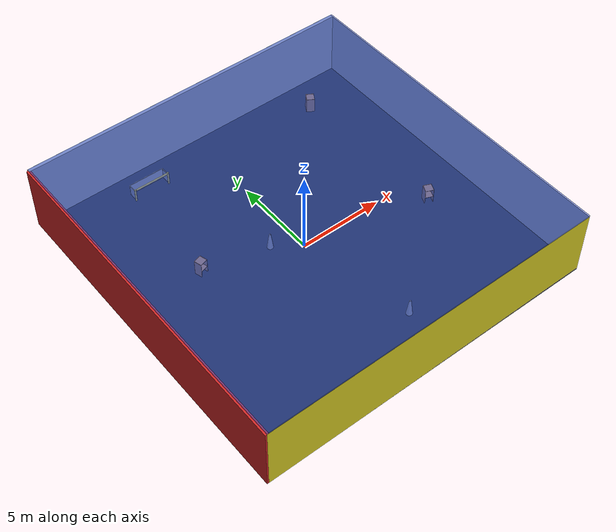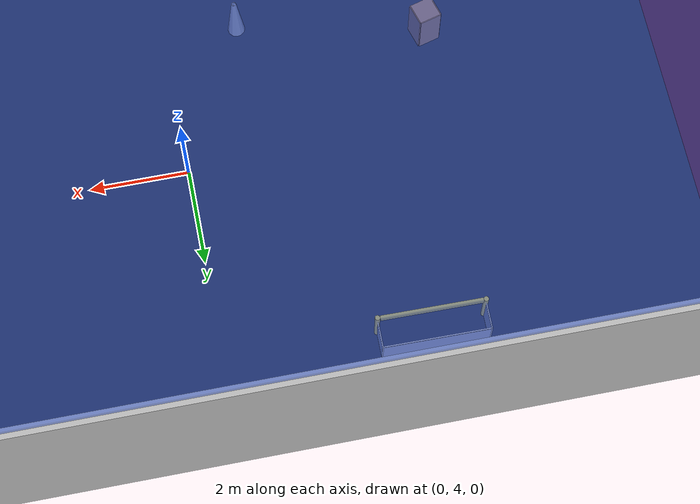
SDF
<sdf version="1.4">
 <world name="default">
  <physics type="ode">
   <max_step_size>0.001</max_step_size>
   <real_time_factor>1</real_time_factor>
   <real_time_update_rate>1000</real_time_update_rate>
   <gravity>0 0 -9.8</gravity>
  </physics>
  <scene><ambient>0.4 0.4 0.4 1</ambient><background>0.7 0.7 0.7 1</background><shadows>1</shadows></scene>
  <model name="Surrounding">
   <static>1</static>
   <link name="Ceiling">
    <collision name="Ceiling_Collision"><geometry><box><size>20 20 0.1</size></box></geometry></collision>
    <visual name="Ceiling_Visual">
     <geometry><box><size>20 20 0.1</size></box></geometry>
     <material>
      <script><uri>file://media/materials/scripts/gazebo.material</uri><name>Gazebo/BlueTransparent</name></script>
     </material>
    </visual>
    <pose>0 0 4.05 0 0 0</pose>
   </link>
   <link name="Wall_South">
    <collision name="Wall_South_Collision">
     <geometry><box><size>20 0 4</size></box></geometry>
     <pose>0 0 2 0 -0 0</pose>
    </collision>
    <visual name="Wall_South_Visual">
     <pose>0 0 2 0 -0 0</pose>
     <geometry><box><size>20 0 4</size></box></geometry>
     <material>
      <script><uri>file://media/materials/scripts/gazebo.material</uri><name>Gazebo/Yellow</name></script>
     </material>
    </visual>
    <velocity_decay><linear>0</linear><angular>0</angular></velocity_decay>
    <pose>0 -10 0 0 -0 0</pose>
   </link>
   <link name="Wall_East">
    <collision name="Wall_21_Collision">
     <geometry><box><size>20 0 4</size></box></geometry>
     <pose>0 0 2 0 -0 0</pose>
    </collision>
    <visual name="Wall_21_Visual">
     <pose>0 0 2 0 -0 0</pose>
     <geometry><box><size>20 0 4</size></box></geometry>
     <material>
      <script><uri>file://media/materials/scripts/gazebo.material</uri><name>Gazebo/CeilingTiled</name></script>
     </material>
    </visual>
    <velocity_decay><linear>0</linear><angular>0</angular></velocity_decay>
    <pose>10 0 0 0 -0 1.5708</pose>
   </link>
   <link name="Wall_North">
    <collision name="Wall_22_Collision">
     <geometry><box><size>20 0.2 4</size></box></geometry>
     <pose>0 0 2 0 -0 0</pose>
    </collision>
    <visual name="Wall_22_Visual">
     <pose>0 0 2 0 -0 0</pose>
     <geometry><box><size>20 0.2 4</size></box></geometry>
     <material>
      <script><uri>file://media/materials/scripts/gazebo.material</uri><name>Gazebo/LightOn</name></script>
     </material>
    </visual>
    <velocity_decay><linear>0</linear><angular>0</angular></velocity_decay>
    <pose>0 10 0 0 -0 0</pose>
   </link>
   <link name="Wall_West">
    <collision name="Wall_23_Collision">
     <geometry><box><size>20 0.2 4</size></box></geometry>
     <pose>0 0 2 0 -0 0</pose>
    </collision>
    <visual name="Wall_23_Visual">
     <pose>0 0 2 0 -0 0</pose>
     <geometry><box><size>20 0.2 4</size></box></geometry>
     <material>
      <script><uri>file://media/materials/scripts/gazebo.material</uri><name>Gazebo/RedGlow</name></script>
     </material>
    </visual>
    <velocity_decay><linear>0</linear><angular>0</angular></velocity_decay>
    <pose>-10 0 0 0 0 -1.5708</pose>
   </link>
   <link name="Ground_link">
    <collision name="collision">
     <pose>0 0 .05 0 -0 0</pose>
     <geometry><box><size>20 20 0.1</size></box></geometry>
    </collision>
    <visual name="visual">
     <pose>0 0 .05 0 -0 0</pose>
     <geometry><box><size>20 20 0.1</size></box></geometry>
     <material>
      <script><uri>file://media/materials/scripts/gazebo.material</uri><name>Gazebo/Black</name></script>
     </material>
    </visual>
   </link>
   <static>1</static>
  </model>
  <spherical_coordinates>
   <surface_model>EARTH_WGS84</surface_model>
   <latitude_deg>0</latitude_deg>
   <longitude_deg>0</longitude_deg>
   <elevation>0</elevation>
   <heading_deg>0</heading_deg>
  </spherical_coordinates>
  <light name="lightball_0" type="diffuse">
   <diffuse>0.8 0.8 0.8 1</diffuse>
   <specular>0.2 0.2 0.2 1</specular>
   <attenuation>
    <range>100</range>
    <constant>0.7</constant>
    <linear>0.01</linear>
    <quadratic>0.001</quadratic>
   </attenuation>
   <direction>-0.5 0.1 -0.9</direction>
   <pose>-2.27658702793 1.98307093711 1.31291408507 0 0 0</pose>
  </light>
  <light name="lightball_1" type="diffuse">
   <diffuse>0.8 0.8 0.8 1</diffuse>
   <specular>0.2 0.2 0.2 1</specular>
   <attenuation>
    <range>100</range>
    <constant>0.7</constant>
    <linear>0.01</linear>
    <quadratic>0.001</quadratic>
   </attenuation>
   <direction>-0.5 0.1 -0.9</direction>
   <pose>8.3489265378 9.73555105025 3.61814055479 0 0 0</pose>
  </light>
  <light name="lightball_2" type="diffuse">
   <diffuse>0.8 0.8 0.8 1</diffuse>
   <specular>0.2 0.2 0.2 1</specular>
   <attenuation>
    <range>100</range>
    <constant>0.7</constant>
    <linear>0.01</linear>
    <quadratic>0.001</quadratic>
   </attenuation>
   <direction>-0.5 0.1 -0.9</direction>
   <pose>-5.27414017818 -6.64320802626 1.9423716797 0 0 0</pose>
  </light>
  <light name="lightball_3" type="diffuse">
   <diffuse>0.8 0.8 0.8 1</diffuse>
   <specular>0.2 0.2 0.2 1</specular>
   <attenuation>
    <range>100</range>
    <constant>0.7</constant>
    <linear>0.01</linear>
    <quadratic>0.001</quadratic>
   </attenuation>
   <direction>-0.5 0.1 -0.9</direction>
   <pose>-2.34506008559 -7.3315352495 1.23133173251 0 0 0</pose>
  </light>
  <light name="lightball_4" type="diffuse">
   <diffuse>0.8 0.8 0.8 1</diffuse>
   <specular>0.2 0.2 0.2 1</specular>
   <attenuation>
    <range>100</range>
    <constant>0.7</constant>
    <linear>0.01</linear>
    <quadratic>0.001</quadratic>
   </attenuation>
   <direction>-0.5 0.1 -0.9</direction>
   <pose>5.08215616106 9.54238234114 2.11893918358 0 0 0</pose>
  </light>
  <light name="lightball_5" type="diffuse">
   <diffuse>0.8 0.8 0.8 1</diffuse>
   <specular>0.2 0.2 0.2 1</specular>
   <attenuation>
    <range>100</range>
    <constant>0.7</constant>
    <linear>0.01</linear>
    <quadratic>0.001</quadratic>
   </attenuation>
   <direction>-0.5 0.1 -0.9</direction>
   <pose>-2.47133649477 7.5534768112 0.953211143655 0 0 0</pose>
  </light>
  <light name="lightball_6" type="diffuse">
   <diffuse>0.8 0.8 0.8 1</diffuse>
   <specular>0.2 0.2 0.2 1</specular>
   <attenuation>
    <range>100</range>
    <constant>0.7</constant>
    <linear>0.01</linear>
    <quadratic>0.001</quadratic>
   </attenuation>
   <direction>-0.5 0.1 -0.9</direction>
   <pose>5.44624302922 6.05404074302 3.39825933072 0 0 0</pose>
  </light>
  <light name="lightball_7" type="diffuse">
   <diffuse>0.8 0.8 0.8 1</diffuse>
   <specular>0.2 0.2 0.2 1</specular>
   <attenuation>
    <range>100</range>
    <constant>0.7</constant>
    <linear>0.01</linear>
    <quadratic>0.001</quadratic>
   </attenuation>
   <direction>-0.5 0.1 -0.9</direction>
   <pose>4.57203490432 0.859830522353 2.3386260296 0 0 0</pose>
  </light>
  <light name="lightball_8" type="diffuse">
   <diffuse>0.8 0.8 0.8 1</diffuse>
   <specular>0.2 0.2 0.2 1</specular>
   <attenuation>
    <range>100</range>
    <constant>0.7</constant>
    <linear>0.01</linear>
    <quadratic>0.001</quadratic>
   </attenuation>
   <direction>-0.5 0.1 -0.9</direction>
   <pose>1.12189793948 -4.55283448236 0.513300178133 0 0 0</pose>
  </light>
  <light name="lightball_9" type="diffuse">
   <diffuse>0.8 0.8 0.8 1</diffuse>
   <specular>0.2 0.2 0.2 1</specular>
   <attenuation>
    <range>100</range>
    <constant>0.7</constant>
    <linear>0.01</linear>
    <quadratic>0.001</quadratic>
   </attenuation>
   <direction>-0.5 0.1 -0.9</direction>
   <pose>7.59821362129 6.1556452322 3.06672902705 0 0 0</pose>
  </light>
  <include><uri>model://cabinet</uri><pose>-5.28994063845 1.8154541016 0 0 0 1.84839833256</pose></include>
  <include>
   <uri>model://robocup_3Dsim_goal</uri>
   <pose>-4.06178238917 8.10796081806 0 0 0 1.56076360119</pose>
  </include>
  <include>
   <uri>model://construction_cone</uri>
   <pose>-1.49272576839 0.974792780531 0 0 0 2.55499438415</pose>
  </include>
  <include>
   <uri>model://construction_cone</uri>
   <pose>1.27123125882 -6.80919576623 0 0 0 1.79783784125</pose>
  </include>
  <include><uri>model://cabinet</uri><pose>7.21673391875 -1.63819325504 0 0 0 1.17755192087</pose></include>
  <include><uri>model://cabinet</uri><pose>6.76862309517 7.92664785816 0 0 0 2.60371586519</pose></include>
 </world>
</sdf>

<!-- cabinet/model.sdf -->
<sdf version="1.5">
  <model name="cabinet">
    <static>true</static>
    <link name="cabinet_bottom_plate">
      <inertial>
        <pose>0 0 -1 0 0 0</pose>
        <inertia>
          <ixx>2.050000</ixx>
          <ixy>0</ixy>
          <ixz>0</ixz>
          <iyy>2.050000</iyy>
          <iyz>0</iyz>
          <izz>2.050000</izz>
        </inertia>
        <mass>25.000000</mass>
      </inertial>
      <collision name="cabinet_bottom_plate_geom">
        <pose>0 0 0.010000 0 0 0</pose>
        <geometry>
          <box>
            <size>0.450000 0.450000 0.020000</size>
          </box>
        </geometry>
      </collision>
      <visual name="cabinet_bottom_plate_geom_visual">
        <pose>0 0 0.010000 0 0 0</pose>
        <geometry>
          <box>
            <size>0.450000 0.450000 0.020000</size>
          </box>
        </geometry>
        <material>
          <script>
            <uri>model://media/materials/scripts/gazebo.material</uri>
            <name>Gazebo/Wood</name>
          </script>
        </material>
      </visual>
      <collision name="cabinet_bottom_plate_geom_cabinet_back_plate">
        <pose>0.235000 0 0.510000 0 0 0</pose>
        <geometry>
          <box>
            <size>0.020000 0.450000 1.020000</size>
          </box>
        </geometry>
      </collision>
      <visual name="cabinet_bottom_plate_geom_cabinet_back_plate_visual">
        <pose>0.235000 0 0.510000 0 0 0</pose>
        <geometry>
          <box>
            <size>0.020000 0.450000 1.020000</size>
          </box>
        </geometry>
        <material>
          <script>
            <uri>model://media/materials/scripts/gazebo.material</uri>
            <name>Gazebo/Wood</name>
          </script>
        </material>
      </visual>
      <collision name="cabinet_bottom_plate_geom_cabinet_left_plate">
        <pose>0 0.235000 0.510000 0 0 0</pose>
        <geometry>
          <box>
            <size>0.450000 0.020000 1.020000</size>
          </box>
        </geometry>
      </collision>
      <visual name="cabinet_bottom_plate_geom_cabinet_left_plate_visual">
        <pose>0 0.235000 0.510000 0 0 0</pose>
        <geometry>
          <box>
            <size>0.450000 0.020000 1.020000</size>
          </box>
        </geometry>
        <material>
          <script>
            <uri>model://media/materials/scripts/gazebo.material</uri>
            <name>Gazebo/Wood</name>
          </script>
        </material>
      </visual>
      <collision name="cabinet_bottom_plate_geom_cabinet_middle_plate">
        <pose>0 0 0.510000 0 0 0</pose>
        <geometry>
          <box>
            <size>0.450000 0.450000 0.020000</size>
          </box>
        </geometry>
      </collision>
      <visual name="cabinet_bottom_plate_geom_cabinet_middle_plate_visual">
        <pose>0 0 0.510000 0 0 0</pose>
        <geometry>
          <box>
            <size>0.450000 0.450000 0.020000</size>
          </box>
        </geometry>
        <material>
          <script>
            <uri>model://media/materials/scripts/gazebo.material</uri>
            <name>Gazebo/Wood</name>
          </script>
        </material>
      </visual>
      <collision name="cabinet_bottom_plate_geom_cabinet_right_plate">
        <pose>0 -0.235000 0.510000 0 0 0</pose>
        <geometry>
          <box>
            <size>0.450000 0.020000 1.020000</size>
          </box>
        </geometry>
      </collision>
      <visual name="cabinet_bottom_plate_geom_cabinet_right_plate_visual">
        <pose>0 -0.235000 0.510000 0 0 0</pose>
        <geometry>
          <box>
            <size>0.450000 0.020000 1.020000</size>
          </box>
        </geometry>
        <material>
          <script>
            <uri>model://media/materials/scripts/gazebo.material</uri>
            <name>Gazebo/Wood</name>
          </script>
        </material>
      </visual>
      <collision name="cabinet_bottom_plate_geom_cabinet_top_plate">
        <pose>0 0 1.010000 0 0 0</pose>
        <geometry>
          <box>
            <size>0.450000 0.450000 0.020000</size>
          </box>
        </geometry>
      </collision>
      <visual name="cabinet_bottom_plate_geom_cabinet_top_plate_visual">
        <pose>0 0 1.010000 0 0 0</pose>
        <geometry>
          <box>
            <size>0.450000 0.450000 0.020000</size>
          </box>
        </geometry>
        <material>
          <script>
            <uri>model://media/materials/scripts/gazebo.material</uri>
            <name>Gazebo/Wood</name>
          </script>
        </material>
      </visual>
    </link>
  </model>
</sdf>

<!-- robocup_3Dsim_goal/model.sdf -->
<sdf version="1.5">
  <model name="robocup_3d_goal">
    <static>true</static>
    <link name="left_post">
      <pose>0 1.05 0.45 0 0 0</pose>
      <collision name="collision">
        <geometry>
          <cylinder>
            <radius>0.05</radius>
            <length>0.9</length>
          </cylinder>
        </geometry>
      </collision>
      <visual name="visual">
        <geometry>
          <cylinder>
            <radius>0.05</radius>
            <length>0.9</length>
          </cylinder>
        </geometry>
        <material>
          <script>
            <uri>file://media/materials/scripts/gazebo.material</uri>
            <name>Gazebo/ZincYellow</name>
          </script>
        </material>
      </visual>
    </link>
    <link name="left_support_horiz_lower">
      <pose>0.30 1.05 0.01 0 0 0</pose>
      <collision name="collision">
        <geometry>
          <box>
            <size>0.50 0.02 0.02</size>
          </box>
        </geometry>
      </collision>
      <visual name="visual">
        <geometry>
          <box>
            <size>0.50 0.02 0.02</size>
          </box>
        </geometry>
        <material>
          <script>
            <uri>file://media/materials/scripts/gazebo.material</uri>
            <name>Gazebo/White</name>
          </script>
        </material>
      </visual>
    </link>
    <link name="left_support_horiz_upper">
      <pose>0.30 1.05 0.79 0 0 0</pose>
      <collision name="collision">
        <geometry>
          <box>
            <size>0.50 0.02 0.02</size>
          </box>
        </geometry>
      </collision>
      <visual name="visual">
        <geometry>
          <box>
            <size>0.50 0.02 0.02</size>
          </box>
        </geometry>
        <material>
          <script>
            <uri>file://media/materials/scripts/gazebo.material</uri>
            <name>Gazebo/White</name>
          </script>
        </material>
      </visual>
    </link>
    <link name="left_support_vertical">
      <pose>0.56 1.05 0.4 0 1.5708 0</pose>
      <collision name="collision">
        <geometry>
          <box>
            <size>0.80 0.02 0.02</size>
          </box>
        </geometry>
      </collision>
      <visual name="visual">
        <geometry>
          <box>
            <size>0.80 0.02 0.02</size>
          </box>
        </geometry>
        <material>
          <script>
            <uri>file://media/materials/scripts/gazebo.material</uri>
            <name>Gazebo/White</name>
          </script>
        </material>
      </visual>
    </link>
    <link name="right_support_horiz_lower">
      <pose>0.30 -1.05 0.01 0 0 0</pose>
      <collision name="collision">
        <geometry>
          <box>
            <size>0.50 0.02 0.02</size>
          </box>
        </geometry>
      </collision>
      <visual name="visual">
        <geometry>
          <box>
            <size>0.50 0.02 0.02</size>
          </box>
        </geometry>
        <material>
          <script>
            <uri>file://media/materials/scripts/gazebo.material</uri>
            <name>Gazebo/White</name>
          </script>
        </material>
      </visual>
    </link>
    <link name="right_support_horiz_upper">
      <pose>0.30 -1.05 0.79 0 0 0</pose>
      <collision name="collision">
        <geometry>
          <box>
            <size>0.50 0.02 0.02</size>
          </box>
        </geometry>
      </collision>
      <visual name="visual">
        <geometry>
          <box>
            <size>0.50 0.02 0.02</size>
          </box>
        </geometry>
        <material>
          <script>
            <uri>file://media/materials/scripts/gazebo.material</uri>
            <name>Gazebo/White</name>
          </script>
        </material>
      </visual>
    </link>
    <link name="right_support_vertical">
      <pose>0.56 -1.05 0.4 0 1.5708 0</pose>
      <collision name="collision">
        <geometry>
          <box>
            <size>0.80 0.02 0.02</size>
          </box>
        </geometry>
      </collision>
      <visual name="visual">
        <geometry>
          <box>
            <size>0.80 0.02 0.02</size>
          </box>
        </geometry>
        <material>
          <script>
            <uri>file://media/materials/scripts/gazebo.material</uri>
            <name>Gazebo/White</name>
          </script>
        </material>
      </visual>
    </link>
    <link name="center_support_horiz_lower">
      <pose>0.56 0 0.01 0 1.5708 0</pose>
      <collision name="collision">
        <geometry>
          <box>
            <size>0.02 2.08 0.02</size>
          </box>
        </geometry>
      </collision>
      <visual name="visual">
        <geometry>
          <box>
            <size>0.02 2.08 0.02</size>
          </box>
        </geometry>
        <material>
          <script>
            <uri>file://media/materials/scripts/gazebo.material</uri>
            <name>Gazebo/White</name>
          </script>
        </material>
      </visual>
    </link>
    <link name="center_support_horiz_upper">
      <pose>0.56 0 0.79 0 1.5708 0</pose>
      <collision name="collision">
        <geometry>
          <box>
            <size>0.02 2.08 0.02</size>
          </box>
        </geometry>
      </collision>
      <visual name="visual">
        <geometry>
          <box>
            <size>0.02 2.08 0.02</size>
          </box>
        </geometry>
        <material>
          <script>
            <uri>file://media/materials/scripts/gazebo.material</uri>
            <name>Gazebo/White</name>
          </script>
        </material>
      </visual>
    </link>
    <link name="right_post">
      <pose>0 -1.05 0.45 0 0 0</pose>
      <collision name="collision">
        <geometry>
          <cylinder>
            <radius>0.05</radius>
            <length>0.9</length>
          </cylinder>
        </geometry>
      </collision>
      <visual name="visual">
        <geometry>
          <cylinder>
            <radius>0.05</radius>
            <length>0.9</length>
          </cylinder>
        </geometry>
        <material>
          <script>
            <uri>file://media/materials/scripts/gazebo.material</uri>
            <name>Gazebo/ZincYellow</name>
          </script>
        </material>
      </visual>
    </link>
    <link name="crossbar">
      <pose>0 0 0.85 1.57 1.57 0</pose>
      <collision name="collision">
        <geometry>
          <cylinder>
            <radius>0.05</radius>
            <length>2.0</length>
          </cylinder>
        </geometry>
      </collision>
      <visual name="visual">
        <geometry>
          <cylinder>
            <radius>0.05</radius>
            <length>2.0</length>
          </cylinder>
        </geometry>
        <material>
          <script>
            <uri>file://media/materials/scripts/gazebo.material</uri>
            <name>Gazebo/ZincYellow</name>
          </script>
        </material>
      </visual>
    </link>
    <link name="center_net">
      <pose>0.56 0 0.40 0 0 0</pose>
      <collision name="collision">
        <geometry>
          <box>
            <size>0.01 2.1 0.80</size>
          </box>
        </geometry>
      </collision>
      <visual name="visual">
        <geometry>
          <box>
            <size>0.01 2.1 0.80</size>
          </box>
        </geometry>
        <material>
          <script>
            <uri>model://../model_source/models/robocup09_spl_field/materials/scripts/</uri>
            <uri>model://../model_source/models/robocup09_spl_field/materials/textures/</uri>
            <name>RoboCup/Net</name>
          </script>
        </material>
      </visual>
    </link>
    <link name="left_net">
      <pose>0.30 1.05 0.40 0 0 0</pose>
      <collision name="collision">
        <geometry>
          <box>
            <size>0.50 0.01 0.76</size>
          </box>
        </geometry>
      </collision>
      <visual name="visual">
        <geometry>
          <box>
            <size>0.50 0.01 0.76</size>
          </box>
        </geometry>
        <material>
          <script>
            <uri>model://../model_source/models/robocup09_spl_field/materials/scripts/</uri>
            <uri>model://../model_source/models/robocup09_spl_field/materials/textures/</uri>
            <name>RoboCup/Net</name>
          </script>
        </material>
      </visual>
    </link>
    <link name="right_net">
      <pose>0.30 -1.05 0.40 0 0 0</pose>
      <collision name="collision">
        <geometry>
          <box>
            <size>0.50 0.01 0.76</size>
          </box>
        </geometry>
      </collision>
      <visual name="visual">
        <geometry>
          <box>
            <size>0.50 0.01 0.76</size>
          </box>
        </geometry>
        <material>
          <script>
            <uri>model://../model_source/models/robocup09_spl_field/materials/scripts/</uri>
            <uri>model://../model_source/models/robocup09_spl_field/materials/textures/</uri>
            <name>RoboCup/Net</name>
          </script>
        </material>
      </visual>
    </link>
  </model>
</sdf>

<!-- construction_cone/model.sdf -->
<sdf version="1.5">
  <model name="Construction Cone">
    <link name="link">
      <collision name="collision">
        <geometry>
          <mesh>
            <scale>10 10 10</scale>
            <uri>file://isr-testbed/construction_cone/meshes/construction_cone.dae</uri>
          </mesh>
        </geometry>
      </collision>
      <visual name="visual">
        <geometry>
          <mesh>
            <scale>10 10 10</scale>
            <uri>file://isr-testbed/construction_cone/meshes/construction_cone.dae</uri>
          </mesh>
        </geometry>
      </visual>
    </link>
  </model>
</sdf>
